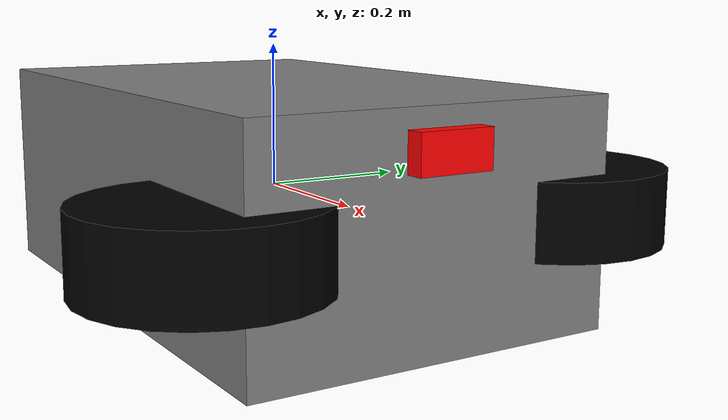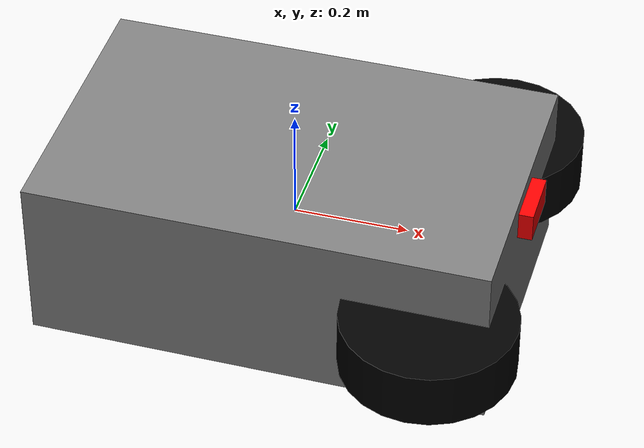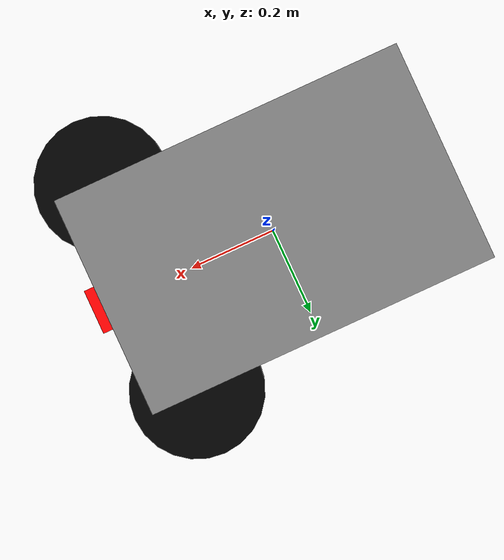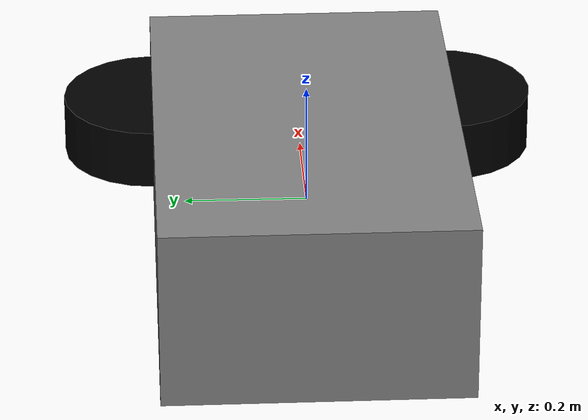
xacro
<?xml version="1.0"?>
<robot name="unmanned_vehicle" xmlns:xacro="http://www.ros.org/wiki/xacro">

  <xacro:property name="M_PI" value="3.1415926535897931" />

  <link name="base_link">
    <visual>
      <geometry>
        <box size="0.8 0.5 0.3"/>
      </geometry>
      <material name="gray">
        <color rgba="0.5 0.5 0.5 1"/>
      </material>
    </visual>
    <collision>
      <geometry>
        <box size="0.8 0.5 0.3"/>
      </geometry>
    </collision>
    <inertial>
      <mass value="20"/>
      <inertia ixx="1.0" ixy="0.0" ixz="0.0" iyy="1.0" iyz="0.0" izz="1.0"/>
    </inertial>
  </link>

  <xacro:macro name="wheel" params="prefix reflect">
    <joint name="${prefix}_wheel_joint" type="continuous">
      <parent link="base_link"/>
      <child link="${prefix}_wheel"/>
      <origin xyz="0.3 ${reflect*0.25} 0" rpy="0 0 0"/>
      <axis xyz="0 1 0"/>
    </joint>

    <link name="${prefix}_wheel">
      <visual>
        <geometry>
          <cylinder radius="0.15" length="0.1"/>
        </geometry>
        <material name="black">
          <color rgba="0 0 0 1"/>
        </material>
      </visual>
      <collision>
        <geometry>
          <cylinder radius="0.15" length="0.1"/>
        </geometry>
      </collision>
      <inertial>
        <mass value="1"/>
        <inertia ixx="0.01" ixy="0.0" ixz="0.0" iyy="0.01" iyz="0.0" izz="0.01"/>
      </inertial>
    </link>
  </xacro:macro>

  <xacro:wheel prefix="front_left" reflect="1" />
  <xacro:wheel prefix="front_right" reflect="-1" />
  <xacro:wheel prefix="rear_left" reflect="1" />
  <xacro:wheel prefix="rear_right" reflect="-1" />

  <link name="camera_link">
    <visual>
      <geometry>
        <box size="0.05 0.1 0.05"/>
      </geometry>
      <material name="red">
        <color rgba="1 0 0 1"/>
      </material>
    </visual>
  </link>

  <joint name="camera_joint" type="fixed">
    <parent link="base_link"/>
    <child link="camera_link"/>
    <origin xyz="0.4 0 0.1" rpy="0 0 0"/>
  </joint>

</robot>
